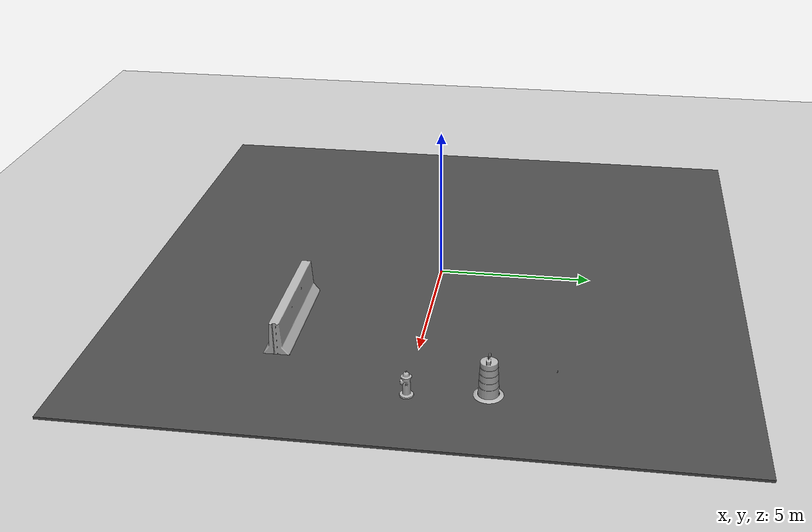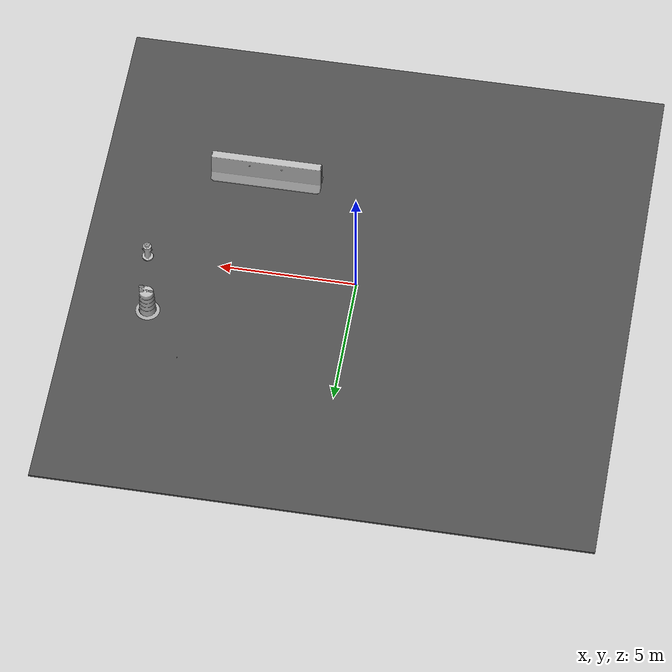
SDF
<sdf version="1.6">
 <world name="default">
  <light name="sun" type="directional">
   <pose>0 0 10 0 -0 0</pose>
   <diffuse>0.8 0.8 0.8 1</diffuse>
   <specular>0.1 0.1 0.1 1</specular>
   <attenuation>
    <range>1000</range>
    <constant>0.9</constant>
    <linear>0.01</linear>
    <quadratic>0.001</quadratic>
   </attenuation>
   <direction>-0.5 0.5 -1</direction>
  </light>
  <model name="ground_plane">
   <static>1</static>
   <link name="link">
    <collision name="collision">
     <geometry><plane><normal>0 0 1</normal><size>100 100</size></plane></geometry>
     <surface><friction><ode><mu>100</mu><mu2>50</mu2></ode></friction></surface>
    </collision>
    <visual name="visual">
     <cast_shadows>0</cast_shadows>
     <geometry><plane><normal>0 0 1</normal><size>100 100</size></plane></geometry>
     <material>
      <script><uri>file://media/materials/scripts/gazebo.material</uri><name>Gazebo/Grey</name></script>
     </material>
    </visual>
   </link>
  </model>
  <gravity>0 0 -9.8</gravity>
  <magnetic_field>6e-06 2.3e-05 -4.2e-05</magnetic_field>
  <atmosphere type="adiabatic"/>
  <physics name="default_physics" default="0" type="ode">
   <max_step_size>0.001</max_step_size>
   <real_time_factor>1</real_time_factor>
   <real_time_update_rate>1000</real_time_update_rate>
  </physics>
  <scene><ambient>0.4 0.4 0.4 1</ambient><background>0.7 0.7 0.7 1</background><shadows>1</shadows></scene>
  <spherical_coordinates>
   <surface_model>EARTH_WGS84</surface_model>
   <latitude_deg>0</latitude_deg>
   <longitude_deg>0</longitude_deg>
   <elevation>0</elevation>
   <heading_deg>0</heading_deg>
  </spherical_coordinates>
  <model name="asphalt_plane">
   <static>1</static>
   <link name="link">
    <collision name="collision"><geometry><box><size>20 20 0.1</size></box></geometry></collision>
    <visual name="visual">
     <cast_shadows>0</cast_shadows>
     <geometry><box><size>20 20 0.1</size></box></geometry>
     <material>
      <script>
       <uri>model://asphalt_plane/materials/scripts</uri>
       <uri>model://asphalt_plane/materials/textures</uri>
       <name>vrc/asphalt</name>
      </script>
     </material>
    </visual>
   </link>
  </model>
  <model name="fire_hydrant">
   <static>1</static>
   <link name="link">
    <collision name="collision">
     <geometry><mesh><uri>model://fire_hydrant/meshes/fire_hydrant.dae</uri><scale>1 1 1</scale></mesh></geometry>
    </collision>
    <visual name="visual">
     <geometry><mesh><uri>model://fire_hydrant/meshes/fire_hydrant.dae</uri><scale>1 1 1</scale></mesh></geometry>
    </visual>
   </link>
   <pose>7.64398 0.060428 0 0 -0 0</pose>
  </model>
  <model name="Construction Barrel">
   <static>1</static>
   <link name="link">
    <inertial>
     <pose>0 0 0.4 0 -0 0</pose>
     <mass>500</mass>
     <inertia><ixx>51.2096</ixx><iyy>51.2096</iyy><izz>25</izz><ixy>0</ixy><ixz>0</ixz><iyz>0</iyz></inertia>
    </inertial>
    <collision name="collision">
     <geometry>
      <mesh><uri>model://construction_barrel/meshes/construction_barrel.dae</uri><scale>1 1 1</scale></mesh>
     </geometry>
    </collision>
    <visual name="visual">
     <geometry>
      <mesh><uri>model://construction_barrel/meshes/construction_barrel.dae</uri><scale>1 1 1</scale></mesh>
     </geometry>
    </visual>
   </link>
   <pose>7.21459 2.34972 0 0 -0 0</pose>
  </model>
  <model name="Construction Cone">
   <static>1</static>
   <link name="link">
    <collision name="collision">
     <geometry>
      <mesh><scale>1 1 1</scale><uri>model://construction_cone/meshes/construction_cone.dae</uri></mesh>
     </geometry>
    </collision>
    <visual name="visual">
     <geometry>
      <mesh><scale>1 1 1</scale><uri>model://construction_cone/meshes/construction_cone.dae</uri></mesh>
     </geometry>
    </visual>
   </link>
   <pose>5.79756 4.23671 0 0 -0 0</pose>
  </model>
  <model name="jersey_barrier">
   <static>1</static>
   <link name="link">
    <visual name="visual">
     <geometry>
      <mesh><uri>model://jersey_barrier/meshes/jersey_barrier.dae</uri><scale>1 1 1</scale></mesh>
     </geometry>
    </visual>
    <collision name="upright">
     <pose>0 0 0.5715 0 -0 0</pose>
     <geometry><box><size>4.06542 0.3063 1.143</size></box></geometry>
    </collision>
    <collision name="base">
     <pose>0 0 0.032258 0 -0 0</pose>
     <geometry><box><size>4.06542 0.8107 0.064516</size></box></geometry>
    </collision>
    <collision name="base2">
     <pose>0 0 0.1 0 -0 0</pose>
     <geometry><box><size>4.06542 0.65 0.1</size></box></geometry>
    </collision>
    <collision name="base3">
     <pose>0 0 0.2 0 -0 0</pose>
     <geometry><box><size>4.06542 0.5 0.1</size></box></geometry>
    </collision>
    <collision name="left-angle">
     <pose>0 -0.224 0.2401 0.9 -0 0</pose>
     <geometry><box><size>4.06542 0.5 0.064516</size></box></geometry>
    </collision>
    <collision name="right-angle">
     <pose>0 0.224 0.2401 -0.9 0 0</pose>
     <geometry><box><size>4.06542 0.5 0.064516</size></box></geometry>
    </collision>
   </link>
   <pose>4.00229 -4.18054 0 0 -0 0</pose>
  </model>
 </world>
</sdf>
